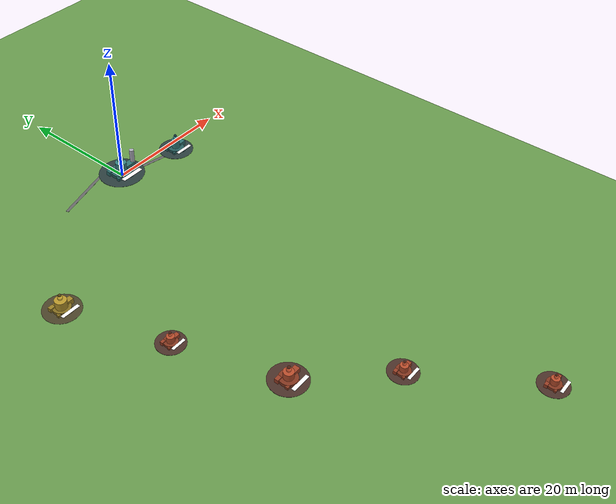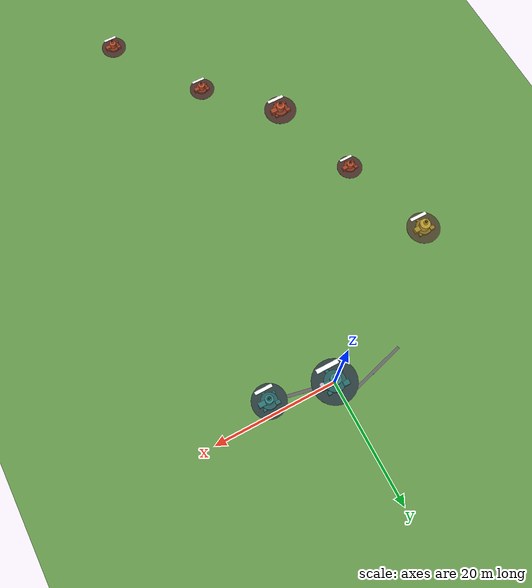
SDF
<sdf version="1.6">
 <world name="ethiopia_cities">
  <model name="ground_plane">
   <static>true</static>
   <link name="link">
    <collision name="collision">
     <geometry><plane><normal>0 0 1</normal><size>200 200</size></plane></geometry>
     <surface><friction><ode><mu>100</mu><mu2>50</mu2></ode></friction></surface>
    </collision>
    <visual name="visual">
     <geometry><plane><normal>0 0 1</normal><size>200 200</size></plane></geometry>
     <material><ambient>0.4 0.6 0.3 1</ambient><diffuse>0.4 0.6 0.3 1</diffuse></material>
    </visual>
   </link>
  </model>
  <model name="addis_ababa">
   <static>true</static>
   <pose>0 0 0.5 0 0 0</pose>
   <link name="link">
    <visual name="plaza_disc">
     <pose>0 0 0.02 0 0 0</pose>
     <geometry><cylinder><radius>3.57</radius><length>0.04</length></cylinder></geometry>
     <material>
      <ambient>0.13 0.18 0.18 1</ambient>
      <diffuse>0.17 0.24 0.24 1</diffuse>
      <specular>0.1 0.1 0.1 1</specular>
     </material>
    </visual>
    <visual name="marker_base">
     <geometry><cylinder><radius>1.7</radius><length>1.1</length></cylinder></geometry>
     <material>
      <ambient>0.1 0.24 0.24 1</ambient>
      <diffuse>0.15 0.36 0.36 1</diffuse>
      <specular>0.2 0.2 0.2 1</specular>
     </material>
    </visual>
    <visual name="marker_tower">
     <pose>0 0 1.32 0 0 0</pose>
     <geometry><cylinder><radius>0.85</radius><length>1.54</length></cylinder></geometry>
     <material>
      <ambient>0.15 0.36 0.36 1</ambient>
      <diffuse>0.21 0.51 0.51 1</diffuse>
      <specular>0.28 0.28 0.28 1</specular>
     </material>
    </visual>
    <visual name="marker_spire">
     <pose>0 0 2.57 0 0 0</pose>
     <geometry><sphere><radius>0.48</radius></sphere></geometry>
     <material>
      <ambient>0.19 0.45 0.45 1</ambient>
      <diffuse>0.25 0.6 0.6 1</diffuse>
      <specular>0.35 0.35 0.35 1</specular>
     </material>
    </visual>
    <visual name="extra_building_a">
     <pose>1.53 0 0.5 0 0 0</pose>
     <geometry><box><size>1.53 1.02 0.99</size></box></geometry>
     <material>
      <ambient>0.11 0.27 0.27 1</ambient>
      <diffuse>0.19 0.45 0.45 1</diffuse>
      <specular>0.2 0.2 0.2 1</specular>
     </material>
    </visual>
    <visual name="extra_building_b">
     <pose>-1.36 1.02 0.39 0 0 0</pose>
     <geometry><box><size>1.02 0.77 0.77</size></box></geometry>
     <material>
      <ambient>0.11 0.27 0.27 1</ambient>
      <diffuse>0.17 0.42 0.42 1</diffuse>
      <specular>0.2 0.2 0.2 1</specular>
     </material>
    </visual>
    <visual name="sub_marker_1">
     <pose>0.34 -1.7 0.25 0 0 0</pose>
     <geometry><box><size>0.59 0.59 0.5</size></box></geometry>
     <material>
      <ambient>0.1 0.24 0.24 1</ambient>
      <diffuse>0.16 0.39 0.39 1</diffuse>
      <specular>0.15 0.15 0.15 1</specular>
     </material>
    </visual>
    <visual name="sub_marker_2">
     <pose>-1.53 -1.02 0.25 0 0 0</pose>
     <geometry><box><size>0.59 0.59 0.5</size></box></geometry>
     <material>
      <ambient>0.1 0.24 0.24 1</ambient>
      <diffuse>0.16 0.39 0.39 1</diffuse>
      <specular>0.15 0.15 0.15 1</specular>
     </material>
    </visual>
    <visual name="sub_marker_3">
     <pose>1.53 1.19 0.25 0 0 0</pose>
     <geometry><box><size>0.59 0.59 0.5</size></box></geometry>
     <material>
      <ambient>0.1 0.24 0.24 1</ambient>
      <diffuse>0.16 0.39 0.39 1</diffuse>
      <specular>0.15 0.15 0.15 1</specular>
     </material>
    </visual>
    <visual name="label_sign">
     <pose>0 -2.38 0.9 0 0 0</pose>
     <geometry><box><size>3.74 0.68 0.08</size></box></geometry>
     <material>
      <ambient>1 1 1 1</ambient>
      <diffuse>1 1 1 1</diffuse>
      <specular>0.1 0.1 0.1 1</specular>
      <pbr>
       <metal>
        <albedo_map>assets/labels/addis_ababa.ppm</albedo_map>
        <roughness>0.9</roughness>
        <metalness>0</metalness>
       </metal>
      </pbr>
     </material>
    </visual>
    <visual name="glow_beacon">
     <pose>0 0 3.14 0 0 0</pose>
     <geometry><sphere><radius>0.31</radius></sphere></geometry>
     <material>
      <ambient>0.07 0.18 0.18 1</ambient>
      <diffuse>0.1 0.24 0.24 1</diffuse>
      <specular>0.1 0.1 0.1 1</specular>
      <emissive>0.4 0.75 0.75 1</emissive>
     </material>
    </visual>
    <visual name="landmark_addis_tower">
     <pose>2.38 0 1.54 0 0 0</pose>
     <geometry><cylinder><radius>0.37</radius><length>3.08</length></cylinder></geometry>
     <material>
      <ambient>0.28 0.28 0.3 1</ambient>
      <diffuse>0.7 0.7 0.75 1</diffuse>
      <specular>0.4 0.4 0.4 1</specular>
     </material>
    </visual>
    <collision name="collision">
     <geometry><cylinder><radius>1.7</radius><length>1.1</length></cylinder></geometry>
    </collision>
   </link>
  </model>
  <model name="jimma">
   <static>true</static>
   <pose>-25 -15 0.4 0 0 0</pose>
   <link name="link">
    <visual name="plaza_disc">
     <pose>0 0 0.02 0 0 0</pose>
     <geometry><cylinder><radius>2.73</radius><length>0.04</length></cylinder></geometry>
     <material>
      <ambient>0.22 0.19 0.12 1</ambient>
      <diffuse>0.29 0.26 0.16 1</diffuse>
      <specular>0.1 0.1 0.1 1</specular>
     </material>
    </visual>
    <visual name="marker_base">
     <geometry><cylinder><radius>1.3</radius><length>0.95</length></cylinder></geometry>
     <material>
      <ambient>0.34 0.28 0.08 1</ambient>
      <diffuse>0.51 0.42 0.12 1</diffuse>
      <specular>0.2 0.2 0.2 1</specular>
     </material>
    </visual>
    <visual name="marker_tower">
     <pose>0 0 1.09 0 0 0</pose>
     <geometry><cylinder><radius>0.85</radius><length>1.23</length></cylinder></geometry>
     <material>
      <ambient>0.51 0.42 0.12 1</ambient>
      <diffuse>0.72 0.59 0.17 1</diffuse>
      <specular>0.28 0.28 0.28 1</specular>
     </material>
    </visual>
    <visual name="marker_spire">
     <pose>0 0 2.07 0 0 0</pose>
     <geometry><sphere><radius>0.36</radius></sphere></geometry>
     <material>
      <ambient>0.64 0.52 0.15 1</ambient>
      <diffuse>0.85 0.7 0.2 1</diffuse>
      <specular>0.35 0.35 0.35 1</specular>
     </material>
    </visual>
    <visual name="extra_building_a">
     <pose>1.17 0 0.43 0 0 0</pose>
     <geometry><box><size>1.17 0.78 0.85</size></box></geometry>
     <material>
      <ambient>0.38 0.32 0.09 1</ambient>
      <diffuse>0.64 0.52 0.15 1</diffuse>
      <specular>0.2 0.2 0.2 1</specular>
     </material>
    </visual>
    <visual name="extra_building_b">
     <pose>-1.04 0.78 0.33 0 0 0</pose>
     <geometry><box><size>0.78 0.59 0.66</size></box></geometry>
     <material>
      <ambient>0.38 0.32 0.09 1</ambient>
      <diffuse>0.59 0.49 0.14 1</diffuse>
      <specular>0.2 0.2 0.2 1</specular>
     </material>
    </visual>
    <visual name="sub_marker_1">
     <pose>0.26 -1.3 0.21 0 0 0</pose>
     <geometry><box><size>0.45 0.45 0.43</size></box></geometry>
     <material>
      <ambient>0.34 0.28 0.08 1</ambient>
      <diffuse>0.55 0.45 0.13 1</diffuse>
      <specular>0.15 0.15 0.15 1</specular>
     </material>
    </visual>
    <visual name="sub_marker_2">
     <pose>-1.17 -0.78 0.21 0 0 0</pose>
     <geometry><box><size>0.45 0.45 0.43</size></box></geometry>
     <material>
      <ambient>0.34 0.28 0.08 1</ambient>
      <diffuse>0.55 0.45 0.13 1</diffuse>
      <specular>0.15 0.15 0.15 1</specular>
     </material>
    </visual>
    <visual name="sub_marker_3">
     <pose>1.17 0.91 0.21 0 0 0</pose>
     <geometry><box><size>0.45 0.45 0.43</size></box></geometry>
     <material>
      <ambient>0.34 0.28 0.08 1</ambient>
      <diffuse>0.55 0.45 0.13 1</diffuse>
      <specular>0.15 0.15 0.15 1</specular>
     </material>
    </visual>
    <visual name="label_sign">
     <pose>0 -1.82 0.82 0 0 0</pose>
     <geometry><box><size>2.86 0.52 0.08</size></box></geometry>
     <material>
      <ambient>1 1 1 1</ambient>
      <diffuse>1 1 1 1</diffuse>
      <specular>0.1 0.1 0.1 1</specular>
      <pbr>
       <metal>
        <albedo_map>assets/labels/jimma.ppm</albedo_map>
        <roughness>0.9</roughness>
        <metalness>0</metalness>
       </metal>
      </pbr>
     </material>
    </visual>
    <visual name="glow_beacon">
     <pose>0 0 2.51 0 0 0</pose>
     <geometry><sphere><radius>0.23</radius></sphere></geometry>
     <material>
      <ambient>0.26 0.21 0.06 1</ambient>
      <diffuse>0.34 0.28 0.08 1</diffuse>
      <specular>0.1 0.1 0.1 1</specular>
      <emissive>1 0.85 0.35 1</emissive>
     </material>
    </visual>
    <collision name="collision">
     <geometry><cylinder><radius>1.3</radius><length>0.95</length></cylinder></geometry>
    </collision>
   </link>
  </model>
  <model name="wolaita_sodo">
   <static>true</static>
   <pose>-20 -30 0.4 0 0 0</pose>
   <link name="link">
    <visual name="plaza_disc">
     <pose>0 0 0.02 0 0 0</pose>
     <geometry><cylinder><radius>2.1</radius><length>0.04</length></cylinder></geometry>
     <material>
      <ambient>0.22 0.14 0.12 1</ambient>
      <diffuse>0.29 0.19 0.16 1</diffuse>
      <specular>0.1 0.1 0.1 1</specular>
     </material>
    </visual>
    <visual name="marker_base">
     <geometry><cylinder><radius>1</radius><length>0.8</length></cylinder></geometry>
     <material>
      <ambient>0.34 0.14 0.08 1</ambient>
      <diffuse>0.51 0.21 0.12 1</diffuse>
      <specular>0.2 0.2 0.2 1</specular>
     </material>
    </visual>
    <visual name="marker_tower">
     <pose>0 0 0.84 0 0 0</pose>
     <geometry><cylinder><radius>0.55</radius><length>0.88</length></cylinder></geometry>
     <material>
      <ambient>0.51 0.21 0.12 1</ambient>
      <diffuse>0.72 0.3 0.17 1</diffuse>
      <specular>0.28 0.28 0.28 1</specular>
     </material>
    </visual>
    <visual name="marker_spire">
     <pose>0 0 1.54 0 0 0</pose>
     <geometry><sphere><radius>0.26</radius></sphere></geometry>
     <material>
      <ambient>0.64 0.26 0.15 1</ambient>
      <diffuse>0.85 0.35 0.2 1</diffuse>
      <specular>0.35 0.35 0.35 1</specular>
     </material>
    </visual>
    <visual name="extra_building_a">
     <pose>0.9 0 0.36 0 0 0</pose>
     <geometry><box><size>0.9 0.6 0.72</size></box></geometry>
     <material>
      <ambient>0.38 0.16 0.09 1</ambient>
      <diffuse>0.64 0.26 0.15 1</diffuse>
      <specular>0.2 0.2 0.2 1</specular>
     </material>
    </visual>
    <visual name="extra_building_b">
     <pose>-0.8 0.6 0.28 0 0 0</pose>
     <geometry><box><size>0.6 0.45 0.56</size></box></geometry>
     <material>
      <ambient>0.38 0.16 0.09 1</ambient>
      <diffuse>0.59 0.24 0.14 1</diffuse>
      <specular>0.2 0.2 0.2 1</specular>
     </material>
    </visual>
    <visual name="sub_marker_1">
     <pose>0.2 -1 0.18 0 0 0</pose>
     <geometry><box><size>0.35 0.35 0.36</size></box></geometry>
     <material>
      <ambient>0.34 0.14 0.08 1</ambient>
      <diffuse>0.55 0.23 0.13 1</diffuse>
      <specular>0.15 0.15 0.15 1</specular>
     </material>
    </visual>
    <visual name="sub_marker_2">
     <pose>-0.9 -0.6 0.18 0 0 0</pose>
     <geometry><box><size>0.35 0.35 0.36</size></box></geometry>
     <material>
      <ambient>0.34 0.14 0.08 1</ambient>
      <diffuse>0.55 0.23 0.13 1</diffuse>
      <specular>0.15 0.15 0.15 1</specular>
     </material>
    </visual>
    <visual name="label_sign">
     <pose>0 -1.4 0.75 0 0 0</pose>
     <geometry><box><size>2.2 0.4 0.08</size></box></geometry>
     <material>
      <ambient>1 1 1 1</ambient>
      <diffuse>1 1 1 1</diffuse>
      <specular>0.1 0.1 0.1 1</specular>
      <pbr>
       <metal>
        <albedo_map>assets/labels/wolaita_sodo.ppm</albedo_map>
        <roughness>0.9</roughness>
        <metalness>0</metalness>
       </metal>
      </pbr>
     </material>
    </visual>
    <visual name="glow_beacon">
     <pose>0 0 1.85 0 0 0</pose>
     <geometry><sphere><radius>0.18</radius></sphere></geometry>
     <material>
      <ambient>0.26 0.1 0.06 1</ambient>
      <diffuse>0.34 0.14 0.08 1</diffuse>
      <specular>0.1 0.1 0.1 1</specular>
      <emissive>1 0.5 0.35 1</emissive>
     </material>
    </visual>
    <collision name="collision">
     <geometry><cylinder><radius>1</radius><length>0.8</length></cylinder></geometry>
    </collision>
   </link>
  </model>
  <model name="arba_minch">
   <static>true</static>
   <pose>-15 -45 0.4 0 0 0</pose>
   <link name="link">
    <visual name="plaza_disc">
     <pose>0 0 0.02 0 0 0</pose>
     <geometry><cylinder><radius>2.73</radius><length>0.04</length></cylinder></geometry>
     <material>
      <ambient>0.22 0.14 0.12 1</ambient>
      <diffuse>0.29 0.19 0.16 1</diffuse>
      <specular>0.1 0.1 0.1 1</specular>
     </material>
    </visual>
    <visual name="marker_base">
     <geometry><cylinder><radius>1.3</radius><length>0.95</length></cylinder></geometry>
     <material>
      <ambient>0.34 0.14 0.08 1</ambient>
      <diffuse>0.51 0.21 0.12 1</diffuse>
      <specular>0.2 0.2 0.2 1</specular>
     </material>
    </visual>
    <visual name="marker_tower">
     <pose>0 0 1 0 0 0</pose>
     <geometry><cylinder><radius>0.72</radius><length>1.04</length></cylinder></geometry>
     <material>
      <ambient>0.51 0.21 0.12 1</ambient>
      <diffuse>0.72 0.3 0.17 1</diffuse>
      <specular>0.28 0.28 0.28 1</specular>
     </material>
    </visual>
    <visual name="marker_spire">
     <pose>0 0 1.86 0 0 0</pose>
     <geometry><sphere><radius>0.34</radius></sphere></geometry>
     <material>
      <ambient>0.64 0.26 0.15 1</ambient>
      <diffuse>0.85 0.35 0.2 1</diffuse>
      <specular>0.35 0.35 0.35 1</specular>
     </material>
    </visual>
    <visual name="extra_building_a">
     <pose>1.17 0 0.43 0 0 0</pose>
     <geometry><box><size>1.17 0.78 0.85</size></box></geometry>
     <material>
      <ambient>0.38 0.16 0.09 1</ambient>
      <diffuse>0.64 0.26 0.15 1</diffuse>
      <specular>0.2 0.2 0.2 1</specular>
     </material>
    </visual>
    <visual name="extra_building_b">
     <pose>-1.04 0.78 0.33 0 0 0</pose>
     <geometry><box><size>0.78 0.59 0.66</size></box></geometry>
     <material>
      <ambient>0.38 0.16 0.09 1</ambient>
      <diffuse>0.59 0.24 0.14 1</diffuse>
      <specular>0.2 0.2 0.2 1</specular>
     </material>
    </visual>
    <visual name="sub_marker_1">
     <pose>0.26 -1.3 0.21 0 0 0</pose>
     <geometry><box><size>0.45 0.45 0.43</size></box></geometry>
     <material>
      <ambient>0.34 0.14 0.08 1</ambient>
      <diffuse>0.55 0.23 0.13 1</diffuse>
      <specular>0.15 0.15 0.15 1</specular>
     </material>
    </visual>
    <visual name="sub_marker_2">
     <pose>-1.17 -0.78 0.21 0 0 0</pose>
     <geometry><box><size>0.45 0.45 0.43</size></box></geometry>
     <material>
      <ambient>0.34 0.14 0.08 1</ambient>
      <diffuse>0.55 0.23 0.13 1</diffuse>
      <specular>0.15 0.15 0.15 1</specular>
     </material>
    </visual>
    <visual name="sub_marker_3">
     <pose>1.17 0.91 0.21 0 0 0</pose>
     <geometry><box><size>0.45 0.45 0.43</size></box></geometry>
     <material>
      <ambient>0.34 0.14 0.08 1</ambient>
      <diffuse>0.55 0.23 0.13 1</diffuse>
      <specular>0.15 0.15 0.15 1</specular>
     </material>
    </visual>
    <visual name="label_sign">
     <pose>0 -1.82 0.82 0 0 0</pose>
     <geometry><box><size>2.86 0.52 0.08</size></box></geometry>
     <material>
      <ambient>1 1 1 1</ambient>
      <diffuse>1 1 1 1</diffuse>
      <specular>0.1 0.1 0.1 1</specular>
      <pbr>
       <metal>
        <albedo_map>assets/labels/arba_minch.ppm</albedo_map>
        <roughness>0.9</roughness>
        <metalness>0</metalness>
       </metal>
      </pbr>
     </material>
    </visual>
    <visual name="glow_beacon">
     <pose>0 0 2.26 0 0 0</pose>
     <geometry><sphere><radius>0.23</radius></sphere></geometry>
     <material>
      <ambient>0.26 0.1 0.06 1</ambient>
      <diffuse>0.34 0.14 0.08 1</diffuse>
      <specular>0.1 0.1 0.1 1</specular>
      <emissive>1 0.5 0.35 1</emissive>
     </material>
    </visual>
    <collision name="collision">
     <geometry><cylinder><radius>1.3</radius><length>0.95</length></cylinder></geometry>
    </collision>
   </link>
  </model>
  <model name="konso">
   <static>true</static>
   <pose>-5 -55 0.4 0 0 0</pose>
   <link name="link">
    <visual name="plaza_disc">
     <pose>0 0 0.02 0 0 0</pose>
     <geometry><cylinder><radius>2.1</radius><length>0.04</length></cylinder></geometry>
     <material>
      <ambient>0.22 0.14 0.12 1</ambient>
      <diffuse>0.29 0.19 0.16 1</diffuse>
      <specular>0.1 0.1 0.1 1</specular>
     </material>
    </visual>
    <visual name="marker_base">
     <geometry><cylinder><radius>1</radius><length>0.8</length></cylinder></geometry>
     <material>
      <ambient>0.34 0.14 0.08 1</ambient>
      <diffuse>0.51 0.21 0.12 1</diffuse>
      <specular>0.2 0.2 0.2 1</specular>
     </material>
    </visual>
    <visual name="marker_tower">
     <pose>0 0 0.84 0 0 0</pose>
     <geometry><cylinder><radius>0.55</radius><length>0.88</length></cylinder></geometry>
     <material>
      <ambient>0.51 0.21 0.12 1</ambient>
      <diffuse>0.72 0.3 0.17 1</diffuse>
      <specular>0.28 0.28 0.28 1</specular>
     </material>
    </visual>
    <visual name="marker_spire">
     <pose>0 0 1.54 0 0 0</pose>
     <geometry><sphere><radius>0.26</radius></sphere></geometry>
     <material>
      <ambient>0.64 0.26 0.15 1</ambient>
      <diffuse>0.85 0.35 0.2 1</diffuse>
      <specular>0.35 0.35 0.35 1</specular>
     </material>
    </visual>
    <visual name="extra_building_a">
     <pose>0.9 0 0.36 0 0 0</pose>
     <geometry><box><size>0.9 0.6 0.72</size></box></geometry>
     <material>
      <ambient>0.38 0.16 0.09 1</ambient>
      <diffuse>0.64 0.26 0.15 1</diffuse>
      <specular>0.2 0.2 0.2 1</specular>
     </material>
    </visual>
    <visual name="extra_building_b">
     <pose>-0.8 0.6 0.28 0 0 0</pose>
     <geometry><box><size>0.6 0.45 0.56</size></box></geometry>
     <material>
      <ambient>0.38 0.16 0.09 1</ambient>
      <diffuse>0.59 0.24 0.14 1</diffuse>
      <specular>0.2 0.2 0.2 1</specular>
     </material>
    </visual>
    <visual name="sub_marker_1">
     <pose>0.2 -1 0.18 0 0 0</pose>
     <geometry><box><size>0.35 0.35 0.36</size></box></geometry>
     <material>
      <ambient>0.34 0.14 0.08 1</ambient>
      <diffuse>0.55 0.23 0.13 1</diffuse>
      <specular>0.15 0.15 0.15 1</specular>
     </material>
    </visual>
    <visual name="sub_marker_2">
     <pose>-0.9 -0.6 0.18 0 0 0</pose>
     <geometry><box><size>0.35 0.35 0.36</size></box></geometry>
     <material>
      <ambient>0.34 0.14 0.08 1</ambient>
      <diffuse>0.55 0.23 0.13 1</diffuse>
      <specular>0.15 0.15 0.15 1</specular>
     </material>
    </visual>
    <visual name="label_sign">
     <pose>0 -1.4 0.75 0 0 0</pose>
     <geometry><box><size>2.2 0.4 0.08</size></box></geometry>
     <material>
      <ambient>1 1 1 1</ambient>
      <diffuse>1 1 1 1</diffuse>
      <specular>0.1 0.1 0.1 1</specular>
      <pbr>
       <metal>
        <albedo_map>assets/labels/konso.ppm</albedo_map>
        <roughness>0.9</roughness>
        <metalness>0</metalness>
       </metal>
      </pbr>
     </material>
    </visual>
    <visual name="glow_beacon">
     <pose>0 0 1.85 0 0 0</pose>
     <geometry><sphere><radius>0.18</radius></sphere></geometry>
     <material>
      <ambient>0.26 0.1 0.06 1</ambient>
      <diffuse>0.34 0.14 0.08 1</diffuse>
      <specular>0.1 0.1 0.1 1</specular>
      <emissive>1 0.5 0.35 1</emissive>
     </material>
    </visual>
    <collision name="collision">
     <geometry><cylinder><radius>1</radius><length>0.8</length></cylinder></geometry>
    </collision>
   </link>
  </model>
  <model name="moyale">
   <static>true</static>
   <pose>5 -70 0.4 0 0 0</pose>
   <link name="link">
    <visual name="plaza_disc">
     <pose>0 0 0.02 0 0 0</pose>
     <geometry><cylinder><radius>2.1</radius><length>0.04</length></cylinder></geometry>
     <material>
      <ambient>0.22 0.14 0.12 1</ambient>
      <diffuse>0.29 0.19 0.16 1</diffuse>
      <specular>0.1 0.1 0.1 1</specular>
     </material>
    </visual>
    <visual name="marker_base">
     <geometry><cylinder><radius>1</radius><length>0.8</length></cylinder></geometry>
     <material>
      <ambient>0.34 0.14 0.08 1</ambient>
      <diffuse>0.51 0.21 0.12 1</diffuse>
      <specular>0.2 0.2 0.2 1</specular>
     </material>
    </visual>
    <visual name="marker_tower">
     <pose>0 0 0.84 0 0 0</pose>
     <geometry><cylinder><radius>0.55</radius><length>0.88</length></cylinder></geometry>
     <material>
      <ambient>0.51 0.21 0.12 1</ambient>
      <diffuse>0.72 0.3 0.17 1</diffuse>
      <specular>0.28 0.28 0.28 1</specular>
     </material>
    </visual>
    <visual name="marker_spire">
     <pose>0 0 1.54 0 0 0</pose>
     <geometry><sphere><radius>0.26</radius></sphere></geometry>
     <material>
      <ambient>0.64 0.26 0.15 1</ambient>
      <diffuse>0.85 0.35 0.2 1</diffuse>
      <specular>0.35 0.35 0.35 1</specular>
     </material>
    </visual>
    <visual name="extra_building_a">
     <pose>0.9 0 0.36 0 0 0</pose>
     <geometry><box><size>0.9 0.6 0.72</size></box></geometry>
     <material>
      <ambient>0.38 0.16 0.09 1</ambient>
      <diffuse>0.64 0.26 0.15 1</diffuse>
      <specular>0.2 0.2 0.2 1</specular>
     </material>
    </visual>
    <visual name="extra_building_b">
     <pose>-0.8 0.6 0.28 0 0 0</pose>
     <geometry><box><size>0.6 0.45 0.56</size></box></geometry>
     <material>
      <ambient>0.38 0.16 0.09 1</ambient>
      <diffuse>0.59 0.24 0.14 1</diffuse>
      <specular>0.2 0.2 0.2 1</specular>
     </material>
    </visual>
    <visual name="sub_marker_1">
     <pose>0.2 -1 0.18 0 0 0</pose>
     <geometry><box><size>0.35 0.35 0.36</size></box></geometry>
     <material>
      <ambient>0.34 0.14 0.08 1</ambient>
      <diffuse>0.55 0.23 0.13 1</diffuse>
      <specular>0.15 0.15 0.15 1</specular>
     </material>
    </visual>
    <visual name="sub_marker_2">
     <pose>-0.9 -0.6 0.18 0 0 0</pose>
     <geometry><box><size>0.35 0.35 0.36</size></box></geometry>
     <material>
      <ambient>0.34 0.14 0.08 1</ambient>
      <diffuse>0.55 0.23 0.13 1</diffuse>
      <specular>0.15 0.15 0.15 1</specular>
     </material>
    </visual>
    <visual name="label_sign">
     <pose>0 -1.4 0.75 0 0 0</pose>
     <geometry><box><size>2.2 0.4 0.08</size></box></geometry>
     <material>
      <ambient>1 1 1 1</ambient>
      <diffuse>1 1 1 1</diffuse>
      <specular>0.1 0.1 0.1 1</specular>
      <pbr>
       <metal>
        <albedo_map>assets/labels/moyale.ppm</albedo_map>
        <roughness>0.9</roughness>
        <metalness>0</metalness>
       </metal>
      </pbr>
     </material>
    </visual>
    <visual name="glow_beacon">
     <pose>0 0 1.85 0 0 0</pose>
     <geometry><sphere><radius>0.18</radius></sphere></geometry>
     <material>
      <ambient>0.26 0.1 0.06 1</ambient>
      <diffuse>0.34 0.14 0.08 1</diffuse>
      <specular>0.1 0.1 0.1 1</specular>
      <emissive>1 0.5 0.35 1</emissive>
     </material>
    </visual>
    <collision name="collision">
     <geometry><cylinder><radius>1</radius><length>0.8</length></cylinder></geometry>
    </collision>
   </link>
  </model>
  <model name="adama">
   <static>true</static>
   <pose>10 -2 0.4 0 0 0</pose>
   <link name="link">
    <visual name="plaza_disc">
     <pose>0 0 0.02 0 0 0</pose>
     <geometry><cylinder><radius>2.73</radius><length>0.04</length></cylinder></geometry>
     <material>
      <ambient>0.13 0.18 0.18 1</ambient>
      <diffuse>0.17 0.24 0.24 1</diffuse>
      <specular>0.1 0.1 0.1 1</specular>
     </material>
    </visual>
    <visual name="marker_base">
     <geometry><cylinder><radius>1.3</radius><length>0.95</length></cylinder></geometry>
     <material>
      <ambient>0.1 0.24 0.24 1</ambient>
      <diffuse>0.15 0.36 0.36 1</diffuse>
      <specular>0.2 0.2 0.2 1</specular>
     </material>
    </visual>
    <visual name="marker_tower">
     <pose>0 0 1.14 0 0 0</pose>
     <geometry><cylinder><radius>0.65</radius><length>1.33</length></cylinder></geometry>
     <material>
      <ambient>0.15 0.36 0.36 1</ambient>
      <diffuse>0.21 0.51 0.51 1</diffuse>
      <specular>0.28 0.28 0.28 1</specular>
     </material>
    </visual>
    <visual name="marker_spire">
     <pose>0 0 2.17 0 0 0</pose>
     <geometry><sphere><radius>0.36</radius></sphere></geometry>
     <material>
      <ambient>0.19 0.45 0.45 1</ambient>
      <diffuse>0.25 0.6 0.6 1</diffuse>
      <specular>0.35 0.35 0.35 1</specular>
     </material>
    </visual>
    <visual name="extra_building_a">
     <pose>1.17 0 0.43 0 0 0</pose>
     <geometry><box><size>1.17 0.78 0.85</size></box></geometry>
     <material>
      <ambient>0.11 0.27 0.27 1</ambient>
      <diffuse>0.19 0.45 0.45 1</diffuse>
      <specular>0.2 0.2 0.2 1</specular>
     </material>
    </visual>
    <visual name="extra_building_b">
     <pose>-1.04 0.78 0.33 0 0 0</pose>
     <geometry><box><size>0.78 0.59 0.66</size></box></geometry>
     <material>
      <ambient>0.11 0.27 0.27 1</ambient>
      <diffuse>0.17 0.42 0.42 1</diffuse>
      <specular>0.2 0.2 0.2 1</specular>
     </material>
    </visual>
    <visual name="sub_marker_1">
     <pose>0.26 -1.3 0.21 0 0 0</pose>
     <geometry><box><size>0.45 0.45 0.43</size></box></geometry>
     <material>
      <ambient>0.1 0.24 0.24 1</ambient>
      <diffuse>0.16 0.39 0.39 1</diffuse>
      <specular>0.15 0.15 0.15 1</specular>
     </material>
    </visual>
    <visual name="sub_marker_2">
     <pose>-1.17 -0.78 0.21 0 0 0</pose>
     <geometry><box><size>0.45 0.45 0.43</size></box></geometry>
     <material>
      <ambient>0.1 0.24 0.24 1</ambient>
      <diffuse>0.16 0.39 0.39 1</diffuse>
      <specular>0.15 0.15 0.15 1</specular>
     </material>
    </visual>
    <visual name="sub_marker_3">
     <pose>1.17 0.91 0.21 0 0 0</pose>
     <geometry><box><size>0.45 0.45 0.43</size></box></geometry>
     <material>
      <ambient>0.1 0.24 0.24 1</ambient>
      <diffuse>0.16 0.39 0.39 1</diffuse>
      <specular>0.15 0.15 0.15 1</specular>
     </material>
    </visual>
    <visual name="label_sign">
     <pose>0 -1.82 0.82 0 0 0</pose>
     <geometry><box><size>2.86 0.52 0.08</size></box></geometry>
     <material>
      <ambient>1 1 1 1</ambient>
      <diffuse>1 1 1 1</diffuse>
      <specular>0.1 0.1 0.1 1</specular>
      <pbr>
       <metal>
        <albedo_map>assets/labels/adama.ppm</albedo_map>
        <roughness>0.9</roughness>
        <metalness>0</metalness>
       </metal>
      </pbr>
     </material>
    </visual>
    <visual name="glow_beacon">
     <pose>0 0 2.61 0 0 0</pose>
     <geometry><sphere><radius>0.23</radius></sphere></geometry>
     <material>
      <ambient>0.07 0.18 0.18 1</ambient>
      <diffuse>0.1 0.24 0.24 1</diffuse>
      <specular>0.1 0.1 0.1 1</specular>
      <emissive>0.4 0.75 0.75 1</emissive>
     </material>
    </visual>
    <collision name="collision">
     <geometry><cylinder><radius>1.3</radius><length>0.95</length></cylinder></geometry>
    </collision>
   </link>
  </model>
  <model name="three_wheel_robot">
   <pose>2 0 0.2 0 0 0</pose>
   <link name="base_footprint">
    <inertial>
     <pose>0.0085199004975124379 0 0.076138059701492539 0 0 0</pose>
     <mass>5.3599999999999994</mass>
     <inertia>
      <ixx>0.043260641169154221</ixx>
      <ixy>0</ixy>
      <ixz>-0.00046469527363184092</ixz>
      <iyy>0.078190871268656731</iyy>
      <iyz>0</iyz>
      <izz>0.1101572300995025</izz>
     </inertia>
    </inertial>
    <collision name="base_footprint_fixed_joint_lump__base_link_collision">
     <pose>0 0 0.074999999999999997 0 0 0</pose>
     <geometry><box><size>0.40000000000000002 0.29999999999999999 0.10000000000000001</size></box></geometry>
    </collision>
    <collision name="base_footprint_fixed_joint_lump__camera_link_collision_1">
     <pose>0.17999999999999999 0 0.125 0 0 0</pose>
     <geometry><box><size>0.029999999999999999 0.080000000000000002 0.029999999999999999</size></box></geometry>
    </collision>
    <collision name="base_footprint_fixed_joint_lump__caster_wheel_collision_2">
     <pose>0.1333333333333333 0 0.040000000000000001 0 0 0</pose>
     <geometry><sphere><radius>0.040000000000000001</radius></sphere></geometry>
     <surface><friction><ode><mu>0</mu><mu2>0</mu2></ode></friction></surface>
    </collision>
    <collision name="base_footprint_fixed_joint_lump__imu_link_collision_3">
     <pose>0 0 0.13500000000000001 0 0 0</pose>
     <geometry><box><size>0.02 0.02 0.02</size></box></geometry>
    </collision>
    <collision name="base_footprint_fixed_joint_lump__lidar_link_collision_4">
     <pose>0.10000000000000001 0 0.17499999999999999 0 0 0</pose>
     <geometry>
      <cylinder><length>0.040000000000000001</length><radius>0.029999999999999999</radius></cylinder>
     </geometry>
    </collision>
    <visual name="base_footprint_fixed_joint_lump__base_link_visual">
     <pose>0 0 0.074999999999999997 0 0 0</pose>
     <geometry><box><size>0.40000000000000002 0.29999999999999999 0.10000000000000001</size></box></geometry>
     <material>
      <script><name>Gazebo/Green</name><uri>file://media/materials/scripts/gazebo.material</uri></script>
      <diffuse>0 1 0 1</diffuse>
      <ambient>0 1 0 1</ambient>
     </material>
    </visual>
    <visual name="base_footprint_fixed_joint_lump__camera_link_visual_1">
     <pose>0.17999999999999999 0 0.125 0 0 0</pose>
     <geometry><box><size>0.029999999999999999 0.080000000000000002 0.029999999999999999</size></box></geometry>
     <material>
      <script><name>Gazebo/Grey</name><uri>file://media/materials/scripts/gazebo.material</uri></script>
      <diffuse>0.625 0.625 0.625 1</diffuse>
      <ambient>0.625 0.625 0.625 1</ambient>
     </material>
    </visual>
    <visual name="base_footprint_fixed_joint_lump__caster_wheel_visual_2">
     <pose>0.1333333333333333 0 0.040000000000000001 0 0 0</pose>
     <geometry><sphere><radius>0.040000000000000001</radius></sphere></geometry>
     <material>
      <script><name>Gazebo/Grey</name><uri>file://media/materials/scripts/gazebo.material</uri></script>
      <diffuse>0.625 0.625 0.625 1</diffuse>
      <ambient>0.625 0.625 0.625 1</ambient>
     </material>
    </visual>
    <visual name="base_footprint_fixed_joint_lump__imu_link_visual_3">
     <pose>0 0 0.13500000000000001 0 0 0</pose>
     <geometry><box><size>0.02 0.02 0.02</size></box></geometry>
     <material>
      <script><name>Gazebo/Yellow</name><uri>file://media/materials/scripts/gazebo.material</uri></script>
      <diffuse>1 1 0 1</diffuse>
      <ambient>1 1 0 1</ambient>
     </material>
    </visual>
    <visual name="base_footprint_fixed_joint_lump__lidar_link_visual_4">
     <pose>0.10000000000000001 0 0.17499999999999999 0 0 0</pose>
     <geometry>
      <cylinder><length>0.040000000000000001</length><radius>0.029999999999999999</radius></cylinder>
     </geometry>
     <material>
      <script><name>Gazebo/Red</name><uri>file://media/materials/scripts/gazebo.material</uri></script>
      <diffuse>1 0 0 1</diffuse>
      <ambient>1 0 0 1</ambient>
     </material>
    </visual>
    <sensor name="camera_sensor" type="camera">
     <always_on>true</always_on>
     <visualize>true</visualize>
     <update_rate>30</update_rate>
     <camera>
      <horizontal_fov>1.3962634</horizontal_fov>
      <image><width>640</width><height>480</height><format>R8G8B8</format></image>
      <clip><near>0.02</near><far>300</far></clip>
      <noise><type>gaussian</type><mean>0</mean><stddev>0.0070000000000000001</stddev></noise>
     </camera>
     <pose>0.17999999999999999 0 0.125 0 0 0</pose>
    </sensor>
    <sensor name="imu_sensor" type="imu">
     <always_on>true</always_on>
     <update_rate>100</update_rate>
     <pose>0 0 0.13500000000000001 0 0 0</pose>
    </sensor>
    <sensor name="lidar_sensor" type="ray">
     <always_on>true</always_on>
     <visualize>true</visualize>
     <update_rate>10</update_rate>
     <ray>
      <scan>
       <horizontal>
        <samples>360</samples>
        <resolution>1</resolution>
        <min_angle>-3.1415899999999999</min_angle>
        <max_angle>3.1415899999999999</max_angle>
       </horizontal>
      </scan>
      <range><min>0.10000000000000001</min><max>10</max><resolution>0.01</resolution></range>
      <noise><type>gaussian</type><mean>0</mean><stddev>0.01</stddev></noise>
     </ray>
     <pose>0.10000000000000001 0 0.17499999999999999 0 0 0</pose>
    </sensor>
   </link>
   <joint name="left_wheel_joint" type="revolute">
    <pose relative_to="base_footprint">-0.10000000000000001 0.17000000000000001 0.074999999999999997 0 0 0</pose>
    <parent>base_footprint</parent>
    <child>left_wheel</child>
    <axis>
     <xyz>0 1 0</xyz>
     <limit><lower>-inf</lower><upper>inf</upper></limit>
     <dynamics><spring_reference>0</spring_reference><spring_stiffness>0</spring_stiffness></dynamics>
    </axis>
   </joint>
   <link name="left_wheel">
    <pose relative_to="left_wheel_joint">0 0 0 0 0 0</pose>
    <inertial>
     <pose>0 0 0 1.5707963267948959 0 0</pose>
     <mass>0.5</mass>
     <inertia>
      <ixx>0.00076979166666666656</ixx>
      <ixy>0</ixy>
      <ixz>0</ixz>
      <iyy>0.00076979166666666656</iyy>
      <iyz>0</iyz>
      <izz>0.0014062499999999999</izz>
     </inertia>
    </inertial>
    <collision name="left_wheel_collision">
     <pose>0 0 0 1.5707963267948959 0 0</pose>
     <geometry>
      <cylinder><length>0.040000000000000001</length><radius>0.074999999999999997</radius></cylinder>
     </geometry>
     <surface><friction><ode><mu>1</mu><mu2>1</mu2></ode></friction></surface>
    </collision>
    <visual name="left_wheel_visual">
     <pose>0 0 0 1.5707963267948959 0 0</pose>
     <geometry>
      <cylinder><length>0.040000000000000001</length><radius>0.074999999999999997</radius></cylinder>
     </geometry>
     <material>
      <script><name>Gazebo/Black</name><uri>file://media/materials/scripts/gazebo.material</uri></script>
      <diffuse>0.125 0.125 0.125 1</diffuse>
      <ambient>0.125 0.125 0.125 1</ambient>
     </material>
    </visual>
   </link>
   <joint name="right_wheel_joint" type="revolute">
    <pose relative_to="base_footprint">-0.10000000000000001 -0.17000000000000001 0.074999999999999997 0 0 0</pose>
    <parent>base_footprint</parent>
    <child>right_wheel</child>
    <axis>
     <xyz>0 1 0</xyz>
     <limit><lower>-inf</lower><upper>inf</upper></limit>
     <dynamics><spring_reference>0</spring_reference><spring_stiffness>0</spring_stiffness></dynamics>
    </axis>
   </joint>
   <link name="right_wheel">
    <pose relative_to="right_wheel_joint">0 0 0 0 0 0</pose>
    <inertial>
     <pose>0 0 0 1.5707963267948959 0 0</pose>
     <mass>0.5</mass>
     <inertia>
      <ixx>0.00076979166666666656</ixx>
      <ixy>0</ixy>
      <ixz>0</ixz>
      <iyy>0.00076979166666666656</iyy>
      <iyz>0</iyz>
      <izz>0.0014062499999999999</izz>
     </inertia>
    </inertial>
    <collision name="right_wheel_collision">
     <pose>0 0 0 1.5707963267948959 0 0</pose>
     <geometry>
      <cylinder><length>0.040000000000000001</length><radius>0.074999999999999997</radius></cylinder>
     </geometry>
     <surface><friction><ode><mu>1</mu><mu2>1</mu2></ode></friction></surface>
    </collision>
    <visual name="right_wheel_visual">
     <pose>0 0 0 1.5707963267948959 0 0</pose>
     <geometry>
      <cylinder><length>0.040000000000000001</length><radius>0.074999999999999997</radius></cylinder>
     </geometry>
     <material>
      <script><name>Gazebo/Black</name><uri>file://media/materials/scripts/gazebo.material</uri></script>
      <diffuse>0.125 0.125 0.125 1</diffuse>
      <ambient>0.125 0.125 0.125 1</ambient>
     </material>
    </visual>
   </link>
   <frame name="camera_optical_joint" attached_to="camera_link">
    <pose>0 0 0 -1.5707963267948959 -5.5511151231257827e-17 -1.5707963267948959</pose>
   </frame>
   <frame name="camera_optical_link" attached_to="camera_optical_joint"/>
   <frame name="camera_joint" attached_to="base_link">
    <pose>0.17999999999999999 0 0.050000000000000003 0 0 0</pose>
   </frame>
   <frame name="camera_link" attached_to="camera_joint"/>
   <frame name="caster_wheel_joint" attached_to="base_link">
    <pose>0.1333333333333333 0 -0.035000000000000003 0 0 0</pose>
   </frame>
   <frame name="caster_wheel" attached_to="caster_wheel_joint"/>
   <frame name="imu_joint" attached_to="base_link"><pose>0 0 0.059999999999999998 0 0 0</pose></frame>
   <frame name="imu_link" attached_to="imu_joint"/>
   <frame name="lidar_joint" attached_to="base_link">
    <pose>0.10000000000000001 0 0.10000000000000001 0 0 0</pose>
   </frame>
   <frame name="lidar_link" attached_to="lidar_joint"/>
   <frame name="base_joint" attached_to="base_footprint"><pose>0 0 0.074999999999999997 0 0 0</pose></frame>
   <frame name="base_link" attached_to="base_joint"/>
   <plugin filename="gz-sim-diff-drive-system" name="gz::sim::systems::DiffDrive">
    <left_joint>left_wheel_joint</left_joint>
    <right_joint>right_wheel_joint</right_joint>
    <wheel_separation>0.34</wheel_separation>
    <wheel_radius>0.075</wheel_radius>
    <odom_publish_frequency>30</odom_publish_frequency>
    <max_linear_velocity>1.5</max_linear_velocity>
    <min_linear_velocity>-1.5</min_linear_velocity>
    <max_angular_velocity>1.5</max_angular_velocity>
    <min_angular_velocity>-1.5</min_angular_velocity>
   </plugin>
  </model>
  <model name="road_aa_ambo">
   <static>true</static>
   <pose>-5.5 1.5 0.01 0 0 0.27</pose>
   <link name="link">
    <visual name="visual">
     <geometry><box><size>12 0.5 0.02</size></box></geometry>
     <material><ambient>0.3 0.3 0.3 1</ambient><diffuse>0.4 0.4 0.4 1</diffuse></material>
    </visual>
   </link>
  </model>
  <model name="road_aa_adama">
   <static>true</static>
   <pose>5 -1 0.01 0 0 -0.2</pose>
   <link name="link">
    <visual name="visual">
     <geometry><box><size>11 0.5 0.02</size></box></geometry>
     <material><ambient>0.3 0.3 0.3 1</ambient><diffuse>0.4 0.4 0.4 1</diffuse></material>
    </visual>
   </link>
  </model>
 </world>
</sdf>
